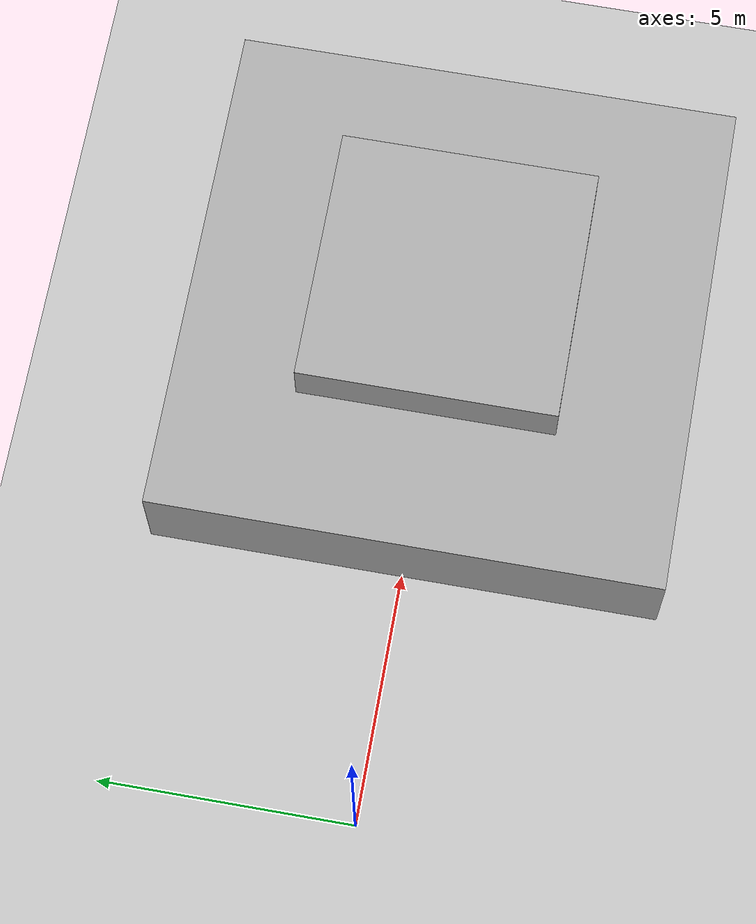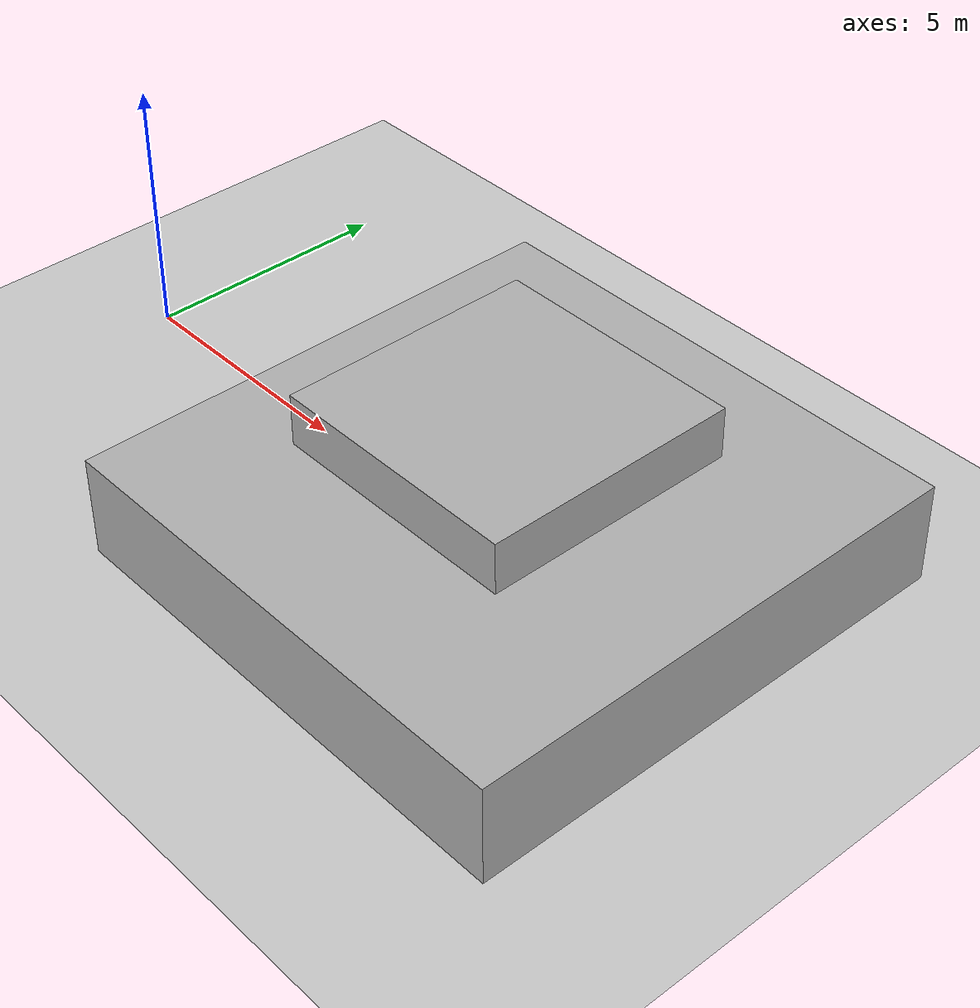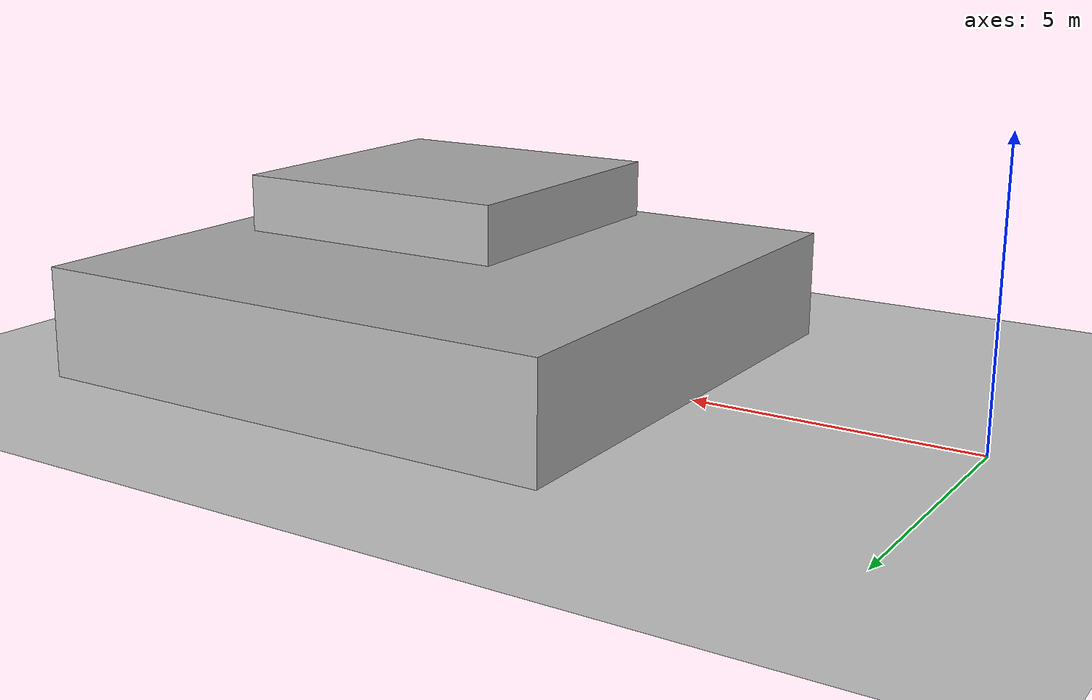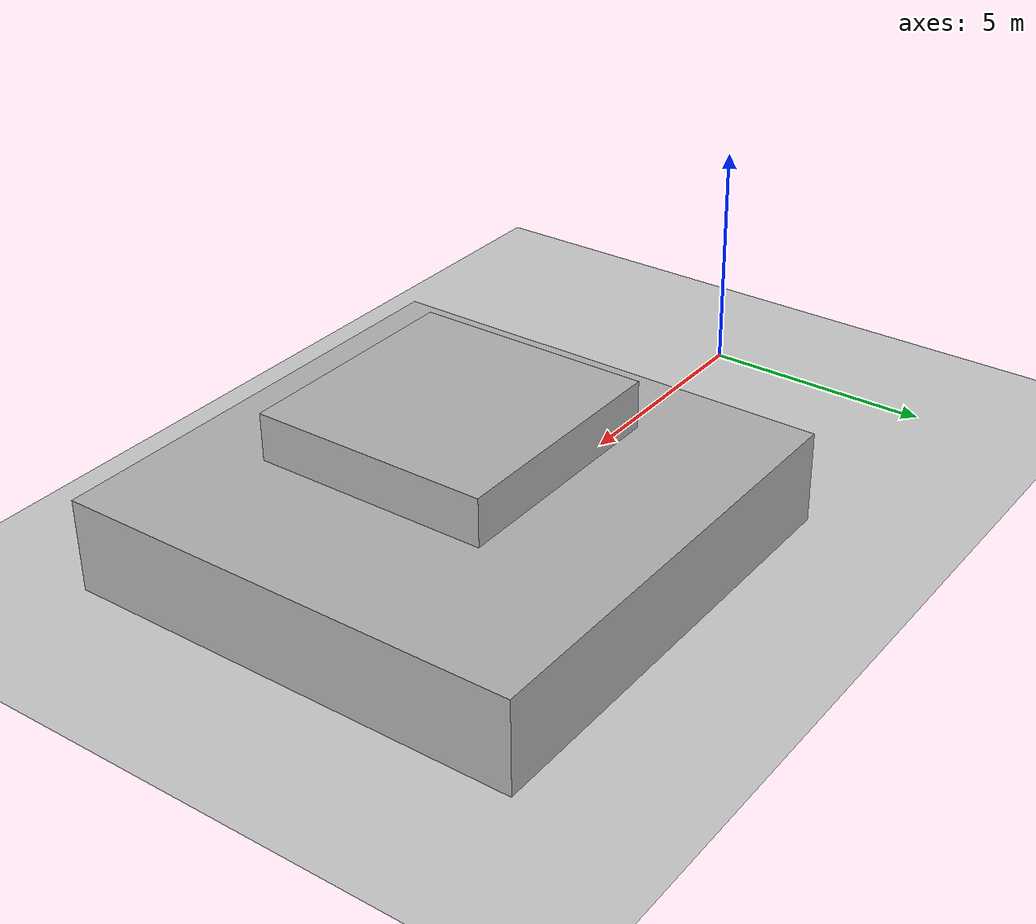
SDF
<sdf version='1.10'>
  <world name='default'>
    <physics type='ode'>
      <max_step_size>0.0040000000000000001</max_step_size>
      <real_time_factor>1</real_time_factor>
      <real_time_update_rate>250</real_time_update_rate>
    </physics>
    <gravity>0 0 -9.8000000000000007</gravity>
    <magnetic_field>6.0000000000000002e-06 2.3e-05 -4.1999999999999998e-05</magnetic_field>
    <atmosphere type='adiabatic'/>
    <scene>
      <grid>false</grid>
      <ambient>0.400000006 0.400000006 0.400000006 1</ambient>
      <background>0.699999988 0.699999988 0.699999988 1</background>
      <shadows>true</shadows>
    </scene>
    <spherical_coordinates>
      <surface_model>EARTH_WGS84</surface_model>
      <world_frame_orientation>ENU</world_frame_orientation>
      <latitude_deg>47.397971057728974</latitude_deg>
      <longitude_deg>8.5461637398001464</longitude_deg>
      <elevation>0</elevation>
      <heading_deg>0</heading_deg>
    </spherical_coordinates>
    <model name='ground_plane'>
      <static>true</static>
      <link name='link'>
        <collision name='collision'>
          <geometry>
            <plane>
              <normal>0 0 1</normal>
              <size>1 1</size>
            </plane>
          </geometry>
          <surface>
            <friction>
              <ode/>
            </friction>
            <bounce/>
            <contact/>
          </surface>
        </collision>
        <visual name='visual'>
          <geometry>
            <plane>
              <normal>0 0 1</normal>
              <size>500 500</size>
            </plane>
          </geometry>
          <material>
            <ambient>0.800000012 0.800000012 0.800000012 1</ambient>
            <diffuse>0.800000012 0.800000012 0.800000012 1</diffuse>
            <specular>0.800000012 0.800000012 0.800000012 1</specular>
          </material>
        </visual>
        <pose>0 0 0 0 0 0</pose>
        <inertial>
          <pose>0 0 0 0 0 0</pose>
          <mass>1</mass>
          <inertia>
            <ixx>1</ixx>
            <ixy>0</ixy>
            <ixz>0</ixz>
            <iyy>1</iyy>
            <iyz>0</iyz>
            <izz>1</izz>
          </inertia>
        </inertial>
        <enable_wind>false</enable_wind>
      </link>
      <pose>0 0 0 0 0 0</pose>
      <self_collide>false</self_collide>
    </model>
    <model name='box'>
      <pose>10.0 0 1.0 -1.5783491557405496e-11 3.1359352745628355e-07 1.9087184265191725e-06</pose>
      <link name='box_link'>
        <inertial>
          <inertia>
            <ixx>0.16666</ixx>
            <ixy>0</ixy>
            <ixz>0</ixz>
            <iyy>0.16666</iyy>
            <iyz>0</iyz>
            <izz>0.16666</izz>
          </inertia>
          <mass>1</mass>
          <pose>0 0 0 0 0 0</pose>
        </inertial>
        <collision name='box_collision'>
          <geometry>
            <box>
              <size>10 10 2</size>
            </box>
          </geometry>
          <surface>
            <friction>
              <ode/>
            </friction>
            <bounce/>
            <contact/>
          </surface>
        </collision>
        <visual name='box_visual'>
          <geometry>
            <box>
              <size>10 10 2</size>
            </box>
          </geometry>
          <material>
            <ambient>0.300000012 0.300000012 0.300000012 1</ambient>
            <diffuse>0.699999988 0.699999988 0.699999988 1</diffuse>
            <specular>1 1 1 1</specular>
          </material>
        </visual>
        <pose>0 0 0 0 0 0</pose>
        <enable_wind>false</enable_wind>
      </link>
      <static>false</static>
      <self_collide>false</self_collide>
    </model>
    <model name='box_0'>
      <pose>10.0 0 3.0 1.1533121738899005e-11 -3.1357464133720479e-07 1.8944420351953634e-06</pose>
      <link name='box_link'>
        <inertial>
          <inertia>
            <ixx>0.16666</ixx>
            <ixy>0</ixy>
            <ixz>0</ixz>
            <iyy>0.16666</iyy>
            <iyz>0</iyz>
            <izz>0.16666</izz>
          </inertia>
          <mass>1</mass>
          <pose>0 0 0 0 0 0</pose>
        </inertial>
        <collision name='box_collision'>
          <geometry>
            <box>
              <size>5 5 1</size>
            </box>
          </geometry>
          <surface>
            <friction>
              <ode/>
            </friction>
            <bounce/>
            <contact/>
          </surface>
        </collision>
        <visual name='box_visual'>
          <geometry>
            <box>
              <size>5 5 1</size>
            </box>
          </geometry>
          <material>
            <ambient>0.300000012 0.300000012 0.300000012 1</ambient>
            <diffuse>0.699999988 0.699999988 0.699999988 1</diffuse>
            <specular>1 1 1 1</specular>
          </material>
        </visual>
        <pose>0 0 0 0 0 0</pose>
        <enable_wind>false</enable_wind>
      </link>
      <static>false</static>
      <self_collide>false</self_collide>
    </model>
    <light name='sunUTC' type='directional'>
      <pose>0 0 500 0 0 0</pose>
      <cast_shadows>true</cast_shadows>
      <intensity>1</intensity>
      <direction>0.001 0.625 -0.78000000000000003</direction>
      <diffuse>0.903999984 0.903999984 0.903999984 1</diffuse>
      <specular>0.270999998 0.270999998 0.270999998 1</specular>
      <attenuation>
        <range>2000</range>
        <linear>0</linear>
        <constant>1</constant>
        <quadratic>0</quadratic>
      </attenuation>
      <spot>
        <inner_angle>0</inner_angle>
        <outer_angle>0</outer_angle>
        <falloff>0</falloff>
      </spot>
    </light>
  </world>
</sdf>
